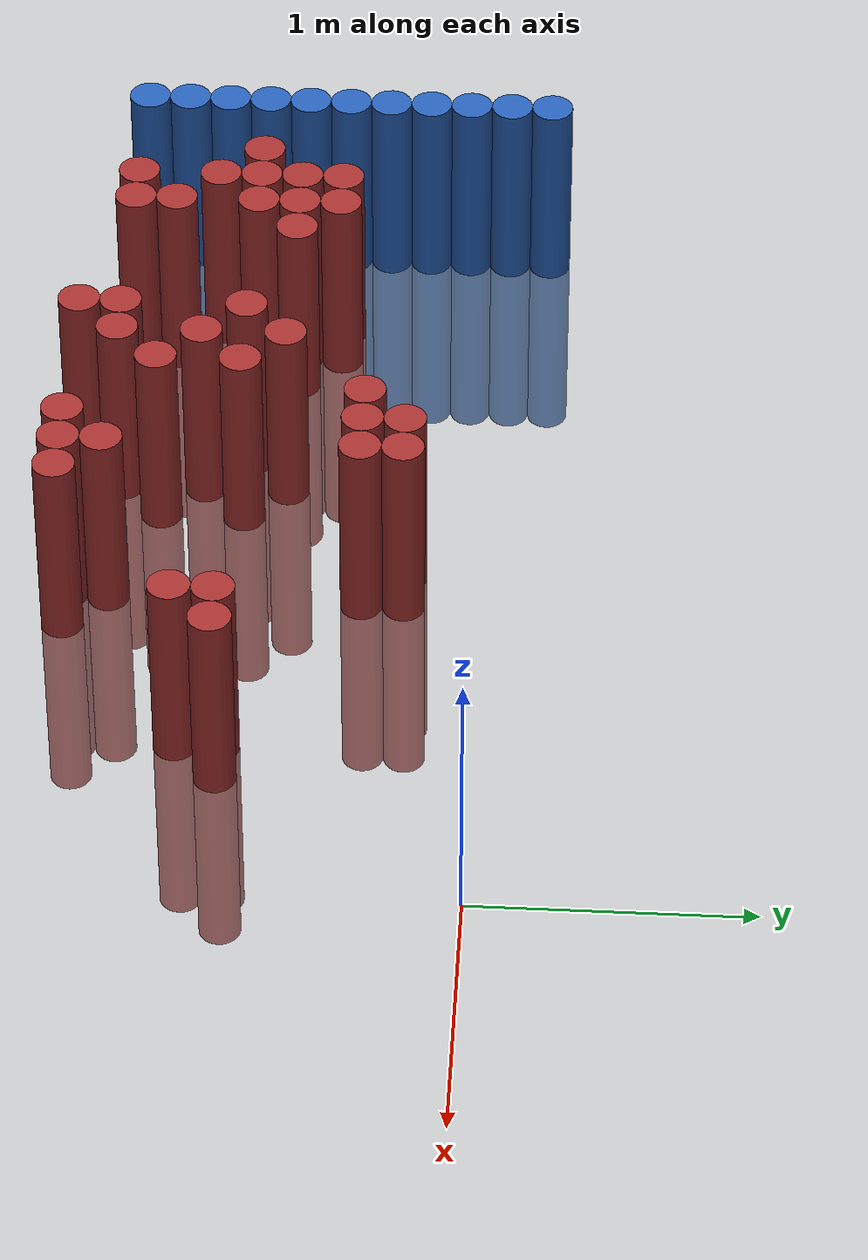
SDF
<sdf version="1.6">
 <world name="default">
  <model name="ground_plane">
   <static>1</static>
   <link name="link">
    <collision name="collision">
     <geometry><plane><normal>0 0 1</normal><size>100 100</size></plane></geometry>
     <surface><friction><ode><mu>100</mu><mu2>50</mu2></ode></friction></surface>
    </collision>
    <visual name="visual">
     <cast_shadows>0</cast_shadows>
     <geometry><plane><normal>0 0 1</normal><size>100 100</size></plane></geometry>
     <material>
      <script><uri>file://media/materials/scripts/gazebo.material</uri><name>Gazebo/Grey</name></script>
     </material>
    </visual>
   </link>
  </model>
  <model name="unit_cylinder_97">
   <static>1</static>
   <pose>-3.425000 -1.325000 0.000000 0.000000 0.000000 0.000000</pose>
   <link name="link">
    <inertial>
     <mass>1</mass>
     <inertia><ixx>0.145833</ixx><ixy>0</ixy><ixz>0</ixz><iyy>0.145833</iyy><iyz>0</iyz><izz>0.125</izz></inertia>
    </inertial>
    <collision name="collision">
     <geometry><cylinder><radius>0.075000</radius><length>1.5</length></cylinder></geometry>
    </collision>
    <visual name="visual">
     <geometry><cylinder><radius>0.075000</radius><length>1.5</length></cylinder></geometry>
     <material>
      <ambient>0.152000 0.379000 0.720000 1</ambient>
      <diffuse>0.152000 0.379000 0.720000 1</diffuse>
     </material>
     <material>
      <script><name>Gazebo/Grey</name><uri>file://media/materials/scripts/gazebo.material</uri></script>
     </material>
    </visual>
   </link>
  </model>
  <model name="unit_cylinder_99">
   <static>1</static>
   <pose>-3.425000 -1.175000 0.000000 0.000000 0.000000 0.000000</pose>
   <link name="link">
    <inertial>
     <mass>1</mass>
     <inertia><ixx>0.145833</ixx><ixy>0</ixy><ixz>0</ixz><iyy>0.145833</iyy><iyz>0</iyz><izz>0.125</izz></inertia>
    </inertial>
    <collision name="collision">
     <geometry><cylinder><radius>0.075000</radius><length>1.5</length></cylinder></geometry>
    </collision>
    <visual name="visual">
     <geometry><cylinder><radius>0.075000</radius><length>1.5</length></cylinder></geometry>
     <material>
      <ambient>0.152000 0.379000 0.720000 1</ambient>
      <diffuse>0.152000 0.379000 0.720000 1</diffuse>
     </material>
     <material>
      <script><name>Gazebo/Grey</name><uri>file://media/materials/scripts/gazebo.material</uri></script>
     </material>
    </visual>
   </link>
  </model>
  <model name="unit_cylinder_101">
   <static>1</static>
   <pose>-3.425000 -1.025000 0.000000 0.000000 0.000000 0.000000</pose>
   <link name="link">
    <inertial>
     <mass>1</mass>
     <inertia><ixx>0.145833</ixx><ixy>0</ixy><ixz>0</ixz><iyy>0.145833</iyy><iyz>0</iyz><izz>0.125</izz></inertia>
    </inertial>
    <collision name="collision">
     <geometry><cylinder><radius>0.075000</radius><length>1.5</length></cylinder></geometry>
    </collision>
    <visual name="visual">
     <geometry><cylinder><radius>0.075000</radius><length>1.5</length></cylinder></geometry>
     <material>
      <ambient>0.152000 0.379000 0.720000 1</ambient>
      <diffuse>0.152000 0.379000 0.720000 1</diffuse>
     </material>
     <material>
      <script><name>Gazebo/Grey</name><uri>file://media/materials/scripts/gazebo.material</uri></script>
     </material>
    </visual>
   </link>
  </model>
  <model name="unit_cylinder_103">
   <static>1</static>
   <pose>-3.425000 -0.875000 0.000000 0.000000 0.000000 0.000000</pose>
   <link name="link">
    <inertial>
     <mass>1</mass>
     <inertia><ixx>0.145833</ixx><ixy>0</ixy><ixz>0</ixz><iyy>0.145833</iyy><iyz>0</iyz><izz>0.125</izz></inertia>
    </inertial>
    <collision name="collision">
     <geometry><cylinder><radius>0.075000</radius><length>1.5</length></cylinder></geometry>
    </collision>
    <visual name="visual">
     <geometry><cylinder><radius>0.075000</radius><length>1.5</length></cylinder></geometry>
     <material>
      <ambient>0.152000 0.379000 0.720000 1</ambient>
      <diffuse>0.152000 0.379000 0.720000 1</diffuse>
     </material>
     <material>
      <script><name>Gazebo/Grey</name><uri>file://media/materials/scripts/gazebo.material</uri></script>
     </material>
    </visual>
   </link>
  </model>
  <model name="unit_cylinder_105">
   <static>1</static>
   <pose>-3.425000 -0.725000 0.000000 0.000000 0.000000 0.000000</pose>
   <link name="link">
    <inertial>
     <mass>1</mass>
     <inertia><ixx>0.145833</ixx><ixy>0</ixy><ixz>0</ixz><iyy>0.145833</iyy><iyz>0</iyz><izz>0.125</izz></inertia>
    </inertial>
    <collision name="collision">
     <geometry><cylinder><radius>0.075000</radius><length>1.5</length></cylinder></geometry>
    </collision>
    <visual name="visual">
     <geometry><cylinder><radius>0.075000</radius><length>1.5</length></cylinder></geometry>
     <material>
      <ambient>0.152000 0.379000 0.720000 1</ambient>
      <diffuse>0.152000 0.379000 0.720000 1</diffuse>
     </material>
     <material>
      <script><name>Gazebo/Grey</name><uri>file://media/materials/scripts/gazebo.material</uri></script>
     </material>
    </visual>
   </link>
  </model>
  <model name="unit_cylinder_107">
   <static>1</static>
   <pose>-3.425000 -0.575000 0.000000 0.000000 0.000000 0.000000</pose>
   <link name="link">
    <inertial>
     <mass>1</mass>
     <inertia><ixx>0.145833</ixx><ixy>0</ixy><ixz>0</ixz><iyy>0.145833</iyy><iyz>0</iyz><izz>0.125</izz></inertia>
    </inertial>
    <collision name="collision">
     <geometry><cylinder><radius>0.075000</radius><length>1.5</length></cylinder></geometry>
    </collision>
    <visual name="visual">
     <geometry><cylinder><radius>0.075000</radius><length>1.5</length></cylinder></geometry>
     <material>
      <ambient>0.152000 0.379000 0.720000 1</ambient>
      <diffuse>0.152000 0.379000 0.720000 1</diffuse>
     </material>
     <material>
      <script><name>Gazebo/Grey</name><uri>file://media/materials/scripts/gazebo.material</uri></script>
     </material>
    </visual>
   </link>
  </model>
  <model name="unit_cylinder_109">
   <static>1</static>
   <pose>-3.425000 -0.425000 0.000000 0.000000 0.000000 0.000000</pose>
   <link name="link">
    <inertial>
     <mass>1</mass>
     <inertia><ixx>0.145833</ixx><ixy>0</ixy><ixz>0</ixz><iyy>0.145833</iyy><iyz>0</iyz><izz>0.125</izz></inertia>
    </inertial>
    <collision name="collision">
     <geometry><cylinder><radius>0.075000</radius><length>1.5</length></cylinder></geometry>
    </collision>
    <visual name="visual">
     <geometry><cylinder><radius>0.075000</radius><length>1.5</length></cylinder></geometry>
     <material>
      <ambient>0.152000 0.379000 0.720000 1</ambient>
      <diffuse>0.152000 0.379000 0.720000 1</diffuse>
     </material>
     <material>
      <script><name>Gazebo/Grey</name><uri>file://media/materials/scripts/gazebo.material</uri></script>
     </material>
    </visual>
   </link>
  </model>
  <model name="unit_cylinder_111">
   <static>1</static>
   <pose>-3.425000 -0.275000 0.000000 0.000000 0.000000 0.000000</pose>
   <link name="link">
    <inertial>
     <mass>1</mass>
     <inertia><ixx>0.145833</ixx><ixy>0</ixy><ixz>0</ixz><iyy>0.145833</iyy><iyz>0</iyz><izz>0.125</izz></inertia>
    </inertial>
    <collision name="collision">
     <geometry><cylinder><radius>0.075000</radius><length>1.5</length></cylinder></geometry>
    </collision>
    <visual name="visual">
     <geometry><cylinder><radius>0.075000</radius><length>1.5</length></cylinder></geometry>
     <material>
      <ambient>0.152000 0.379000 0.720000 1</ambient>
      <diffuse>0.152000 0.379000 0.720000 1</diffuse>
     </material>
     <material>
      <script><name>Gazebo/Grey</name><uri>file://media/materials/scripts/gazebo.material</uri></script>
     </material>
    </visual>
   </link>
  </model>
  <model name="unit_cylinder_113">
   <static>1</static>
   <pose>-3.425000 -0.125000 0.000000 0.000000 0.000000 0.000000</pose>
   <link name="link">
    <inertial>
     <mass>1</mass>
     <inertia><ixx>0.145833</ixx><ixy>0</ixy><ixz>0</ixz><iyy>0.145833</iyy><iyz>0</iyz><izz>0.125</izz></inertia>
    </inertial>
    <collision name="collision">
     <geometry><cylinder><radius>0.075000</radius><length>1.5</length></cylinder></geometry>
    </collision>
    <visual name="visual">
     <geometry><cylinder><radius>0.075000</radius><length>1.5</length></cylinder></geometry>
     <material>
      <ambient>0.152000 0.379000 0.720000 1</ambient>
      <diffuse>0.152000 0.379000 0.720000 1</diffuse>
     </material>
     <material>
      <script><name>Gazebo/Grey</name><uri>file://media/materials/scripts/gazebo.material</uri></script>
     </material>
    </visual>
   </link>
  </model>
  <model name="unit_cylinder_115">
   <static>1</static>
   <pose>-3.425000 0.025000 0.000000 0.000000 0.000000 0.000000</pose>
   <link name="link">
    <inertial>
     <mass>1</mass>
     <inertia><ixx>0.145833</ixx><ixy>0</ixy><ixz>0</ixz><iyy>0.145833</iyy><iyz>0</iyz><izz>0.125</izz></inertia>
    </inertial>
    <collision name="collision">
     <geometry><cylinder><radius>0.075000</radius><length>1.5</length></cylinder></geometry>
    </collision>
    <visual name="visual">
     <geometry><cylinder><radius>0.075000</radius><length>1.5</length></cylinder></geometry>
     <material>
      <ambient>0.152000 0.379000 0.720000 1</ambient>
      <diffuse>0.152000 0.379000 0.720000 1</diffuse>
     </material>
     <material>
      <script><name>Gazebo/Grey</name><uri>file://media/materials/scripts/gazebo.material</uri></script>
     </material>
    </visual>
   </link>
  </model>
  <model name="unit_cylinder_117">
   <static>1</static>
   <pose>-3.425000 0.175000 0.000000 0.000000 0.000000 0.000000</pose>
   <link name="link">
    <inertial>
     <mass>1</mass>
     <inertia><ixx>0.145833</ixx><ixy>0</ixy><ixz>0</ixz><iyy>0.145833</iyy><iyz>0</iyz><izz>0.125</izz></inertia>
    </inertial>
    <collision name="collision">
     <geometry><cylinder><radius>0.075000</radius><length>1.5</length></cylinder></geometry>
    </collision>
    <visual name="visual">
     <geometry><cylinder><radius>0.075000</radius><length>1.5</length></cylinder></geometry>
     <material>
      <ambient>0.152000 0.379000 0.720000 1</ambient>
      <diffuse>0.152000 0.379000 0.720000 1</diffuse>
     </material>
     <material>
      <script><name>Gazebo/Grey</name><uri>file://media/materials/scripts/gazebo.material</uri></script>
     </material>
    </visual>
   </link>
  </model>
  <model name="unit_cylinder_212">
   <static>1</static>
   <pose>-3.425000 -1.325000 0.000000 0.000000 0.000000 0.000000</pose>
   <link name="link">
    <inertial>
     <mass>1</mass>
     <inertia><ixx>0.145833</ixx><ixy>0</ixy><ixz>0</ixz><iyy>0.145833</iyy><iyz>0</iyz><izz>0.125</izz></inertia>
    </inertial>
    <collision name="collision">
     <geometry><cylinder><radius>0.075000</radius><length>1.5</length></cylinder></geometry>
    </collision>
    <visual name="visual">
     <geometry><cylinder><radius>0.075000</radius><length>1.5</length></cylinder></geometry>
     <material>
      <ambient>0.152000 0.379000 0.720000 1</ambient>
      <diffuse>0.152000 0.379000 0.720000 1</diffuse>
     </material>
     <material>
      <script><name>Gazebo/Grey</name><uri>file://media/materials/scripts/gazebo.material</uri></script>
     </material>
    </visual>
   </link>
  </model>
  <model name="unit_cylinder_213">
   <static>1</static>
   <pose>-3.425000 -1.175000 0.000000 0.000000 0.000000 0.000000</pose>
   <link name="link">
    <inertial>
     <mass>1</mass>
     <inertia><ixx>0.145833</ixx><ixy>0</ixy><ixz>0</ixz><iyy>0.145833</iyy><iyz>0</iyz><izz>0.125</izz></inertia>
    </inertial>
    <collision name="collision">
     <geometry><cylinder><radius>0.075000</radius><length>1.5</length></cylinder></geometry>
    </collision>
    <visual name="visual">
     <geometry><cylinder><radius>0.075000</radius><length>1.5</length></cylinder></geometry>
     <material>
      <ambient>0.152000 0.379000 0.720000 1</ambient>
      <diffuse>0.152000 0.379000 0.720000 1</diffuse>
     </material>
     <material>
      <script><name>Gazebo/Grey</name><uri>file://media/materials/scripts/gazebo.material</uri></script>
     </material>
    </visual>
   </link>
  </model>
  <model name="unit_cylinder_214">
   <static>1</static>
   <pose>-3.425000 -1.025000 0.000000 0.000000 0.000000 0.000000</pose>
   <link name="link">
    <inertial>
     <mass>1</mass>
     <inertia><ixx>0.145833</ixx><ixy>0</ixy><ixz>0</ixz><iyy>0.145833</iyy><iyz>0</iyz><izz>0.125</izz></inertia>
    </inertial>
    <collision name="collision">
     <geometry><cylinder><radius>0.075000</radius><length>1.5</length></cylinder></geometry>
    </collision>
    <visual name="visual">
     <geometry><cylinder><radius>0.075000</radius><length>1.5</length></cylinder></geometry>
     <material>
      <ambient>0.152000 0.379000 0.720000 1</ambient>
      <diffuse>0.152000 0.379000 0.720000 1</diffuse>
     </material>
     <material>
      <script><name>Gazebo/Grey</name><uri>file://media/materials/scripts/gazebo.material</uri></script>
     </material>
    </visual>
   </link>
  </model>
  <model name="unit_cylinder_215">
   <static>1</static>
   <pose>-3.425000 -0.875000 0.000000 0.000000 0.000000 0.000000</pose>
   <link name="link">
    <inertial>
     <mass>1</mass>
     <inertia><ixx>0.145833</ixx><ixy>0</ixy><ixz>0</ixz><iyy>0.145833</iyy><iyz>0</iyz><izz>0.125</izz></inertia>
    </inertial>
    <collision name="collision">
     <geometry><cylinder><radius>0.075000</radius><length>1.5</length></cylinder></geometry>
    </collision>
    <visual name="visual">
     <geometry><cylinder><radius>0.075000</radius><length>1.5</length></cylinder></geometry>
     <material>
      <ambient>0.152000 0.379000 0.720000 1</ambient>
      <diffuse>0.152000 0.379000 0.720000 1</diffuse>
     </material>
     <material>
      <script><name>Gazebo/Grey</name><uri>file://media/materials/scripts/gazebo.material</uri></script>
     </material>
    </visual>
   </link>
  </model>
  <model name="unit_cylinder_216">
   <static>1</static>
   <pose>-3.425000 -0.725000 0.000000 0.000000 0.000000 0.000000</pose>
   <link name="link">
    <inertial>
     <mass>1</mass>
     <inertia><ixx>0.145833</ixx><ixy>0</ixy><ixz>0</ixz><iyy>0.145833</iyy><iyz>0</iyz><izz>0.125</izz></inertia>
    </inertial>
    <collision name="collision">
     <geometry><cylinder><radius>0.075000</radius><length>1.5</length></cylinder></geometry>
    </collision>
    <visual name="visual">
     <geometry><cylinder><radius>0.075000</radius><length>1.5</length></cylinder></geometry>
     <material>
      <ambient>0.152000 0.379000 0.720000 1</ambient>
      <diffuse>0.152000 0.379000 0.720000 1</diffuse>
     </material>
     <material>
      <script><name>Gazebo/Grey</name><uri>file://media/materials/scripts/gazebo.material</uri></script>
     </material>
    </visual>
   </link>
  </model>
  <model name="unit_cylinder_217">
   <static>1</static>
   <pose>-3.425000 -0.575000 0.000000 0.000000 0.000000 0.000000</pose>
   <link name="link">
    <inertial>
     <mass>1</mass>
     <inertia><ixx>0.145833</ixx><ixy>0</ixy><ixz>0</ixz><iyy>0.145833</iyy><iyz>0</iyz><izz>0.125</izz></inertia>
    </inertial>
    <collision name="collision">
     <geometry><cylinder><radius>0.075000</radius><length>1.5</length></cylinder></geometry>
    </collision>
    <visual name="visual">
     <geometry><cylinder><radius>0.075000</radius><length>1.5</length></cylinder></geometry>
     <material>
      <ambient>0.152000 0.379000 0.720000 1</ambient>
      <diffuse>0.152000 0.379000 0.720000 1</diffuse>
     </material>
     <material>
      <script><name>Gazebo/Grey</name><uri>file://media/materials/scripts/gazebo.material</uri></script>
     </material>
    </visual>
   </link>
  </model>
  <model name="unit_cylinder_218">
   <static>1</static>
   <pose>-3.425000 -0.425000 0.000000 0.000000 0.000000 0.000000</pose>
   <link name="link">
    <inertial>
     <mass>1</mass>
     <inertia><ixx>0.145833</ixx><ixy>0</ixy><ixz>0</ixz><iyy>0.145833</iyy><iyz>0</iyz><izz>0.125</izz></inertia>
    </inertial>
    <collision name="collision">
     <geometry><cylinder><radius>0.075000</radius><length>1.5</length></cylinder></geometry>
    </collision>
    <visual name="visual">
     <geometry><cylinder><radius>0.075000</radius><length>1.5</length></cylinder></geometry>
     <material>
      <ambient>0.152000 0.379000 0.720000 1</ambient>
      <diffuse>0.152000 0.379000 0.720000 1</diffuse>
     </material>
     <material>
      <script><name>Gazebo/Grey</name><uri>file://media/materials/scripts/gazebo.material</uri></script>
     </material>
    </visual>
   </link>
  </model>
  <model name="unit_cylinder_219">
   <static>1</static>
   <pose>-3.425000 -0.275000 0.000000 0.000000 0.000000 0.000000</pose>
   <link name="link">
    <inertial>
     <mass>1</mass>
     <inertia><ixx>0.145833</ixx><ixy>0</ixy><ixz>0</ixz><iyy>0.145833</iyy><iyz>0</iyz><izz>0.125</izz></inertia>
    </inertial>
    <collision name="collision">
     <geometry><cylinder><radius>0.075000</radius><length>1.5</length></cylinder></geometry>
    </collision>
    <visual name="visual">
     <geometry><cylinder><radius>0.075000</radius><length>1.5</length></cylinder></geometry>
     <material>
      <ambient>0.152000 0.379000 0.720000 1</ambient>
      <diffuse>0.152000 0.379000 0.720000 1</diffuse>
     </material>
     <material>
      <script><name>Gazebo/Grey</name><uri>file://media/materials/scripts/gazebo.material</uri></script>
     </material>
    </visual>
   </link>
  </model>
  <model name="unit_cylinder_220">
   <static>1</static>
   <pose>-3.425000 -0.125000 0.000000 0.000000 0.000000 0.000000</pose>
   <link name="link">
    <inertial>
     <mass>1</mass>
     <inertia><ixx>0.145833</ixx><ixy>0</ixy><ixz>0</ixz><iyy>0.145833</iyy><iyz>0</iyz><izz>0.125</izz></inertia>
    </inertial>
    <collision name="collision">
     <geometry><cylinder><radius>0.075000</radius><length>1.5</length></cylinder></geometry>
    </collision>
    <visual name="visual">
     <geometry><cylinder><radius>0.075000</radius><length>1.5</length></cylinder></geometry>
     <material>
      <ambient>0.152000 0.379000 0.720000 1</ambient>
      <diffuse>0.152000 0.379000 0.720000 1</diffuse>
     </material>
     <material>
      <script><name>Gazebo/Grey</name><uri>file://media/materials/scripts/gazebo.material</uri></script>
     </material>
    </visual>
   </link>
  </model>
  <model name="unit_cylinder_221">
   <static>1</static>
   <pose>-3.425000 0.025000 0.000000 0.000000 0.000000 0.000000</pose>
   <link name="link">
    <inertial>
     <mass>1</mass>
     <inertia><ixx>0.145833</ixx><ixy>0</ixy><ixz>0</ixz><iyy>0.145833</iyy><iyz>0</iyz><izz>0.125</izz></inertia>
    </inertial>
    <collision name="collision">
     <geometry><cylinder><radius>0.075000</radius><length>1.5</length></cylinder></geometry>
    </collision>
    <visual name="visual">
     <geometry><cylinder><radius>0.075000</radius><length>1.5</length></cylinder></geometry>
     <material>
      <ambient>0.152000 0.379000 0.720000 1</ambient>
      <diffuse>0.152000 0.379000 0.720000 1</diffuse>
     </material>
     <material>
      <script><name>Gazebo/Grey</name><uri>file://media/materials/scripts/gazebo.material</uri></script>
     </material>
    </visual>
   </link>
  </model>
  <model name="unit_cylinder_222">
   <static>1</static>
   <pose>-3.425000 0.175000 0.000000 0.000000 0.000000 0.000000</pose>
   <link name="link">
    <inertial>
     <mass>1</mass>
     <inertia><ixx>0.145833</ixx><ixy>0</ixy><ixz>0</ixz><iyy>0.145833</iyy><iyz>0</iyz><izz>0.125</izz></inertia>
    </inertial>
    <collision name="collision">
     <geometry><cylinder><radius>0.075000</radius><length>1.5</length></cylinder></geometry>
    </collision>
    <visual name="visual">
     <geometry><cylinder><radius>0.075000</radius><length>1.5</length></cylinder></geometry>
     <material>
      <ambient>0.152000 0.379000 0.720000 1</ambient>
      <diffuse>0.152000 0.379000 0.720000 1</diffuse>
     </material>
     <material>
      <script><name>Gazebo/Grey</name><uri>file://media/materials/scripts/gazebo.material</uri></script>
     </material>
    </visual>
   </link>
  </model>
  <model name="unit_cylinder_269">
   <static>1</static>
   <pose>-3.125000 -0.875000 0.000000 0.000000 0.000000 0.000000</pose>
   <link name="link">
    <inertial>
     <mass>1</mass>
     <inertia><ixx>0.145833</ixx><ixy>0</ixy><ixz>0</ixz><iyy>0.145833</iyy><iyz>0</iyz><izz>0.125</izz></inertia>
    </inertial>
    <collision name="collision">
     <geometry><cylinder><radius>0.075000</radius><length>1.5</length></cylinder></geometry>
    </collision>
    <visual name="visual">
     <geometry><cylinder><radius>0.075000</radius><length>1.5</length></cylinder></geometry>
     <material>
      <ambient>0.648000 0.192000 0.192000 1</ambient>
      <diffuse>0.648000 0.192000 0.192000 1</diffuse>
     </material>
     <material>
      <script><name>Gazebo/Grey</name><uri>file://media/materials/scripts/gazebo.material</uri></script>
     </material>
    </visual>
   </link>
  </model>
  <model name="unit_cylinder_274">
   <static>1</static>
   <pose>-2.975000 -1.325000 0.000000 0.000000 0.000000 0.000000</pose>
   <link name="link">
    <inertial>
     <mass>1</mass>
     <inertia><ixx>0.145833</ixx><ixy>0</ixy><ixz>0</ixz><iyy>0.145833</iyy><iyz>0</iyz><izz>0.125</izz></inertia>
    </inertial>
    <collision name="collision">
     <geometry><cylinder><radius>0.075000</radius><length>1.5</length></cylinder></geometry>
    </collision>
    <visual name="visual">
     <geometry><cylinder><radius>0.075000</radius><length>1.5</length></cylinder></geometry>
     <material>
      <ambient>0.648000 0.192000 0.192000 1</ambient>
      <diffuse>0.648000 0.192000 0.192000 1</diffuse>
     </material>
     <material>
      <script><name>Gazebo/Grey</name><uri>file://media/materials/scripts/gazebo.material</uri></script>
     </material>
    </visual>
   </link>
  </model>
  <model name="unit_cylinder_275">
   <static>1</static>
   <pose>-2.975000 -1.025000 0.000000 0.000000 0.000000 0.000000</pose>
   <link name="link">
    <inertial>
     <mass>1</mass>
     <inertia><ixx>0.145833</ixx><ixy>0</ixy><ixz>0</ixz><iyy>0.145833</iyy><iyz>0</iyz><izz>0.125</izz></inertia>
    </inertial>
    <collision name="collision">
     <geometry><cylinder><radius>0.075000</radius><length>1.5</length></cylinder></geometry>
    </collision>
    <visual name="visual">
     <geometry><cylinder><radius>0.075000</radius><length>1.5</length></cylinder></geometry>
     <material>
      <ambient>0.648000 0.192000 0.192000 1</ambient>
      <diffuse>0.648000 0.192000 0.192000 1</diffuse>
     </material>
     <material>
      <script><name>Gazebo/Grey</name><uri>file://media/materials/scripts/gazebo.material</uri></script>
     </material>
    </visual>
   </link>
  </model>
  <model name="unit_cylinder_276">
   <static>1</static>
   <pose>-2.975000 -0.875000 0.000000 0.000000 0.000000 0.000000</pose>
   <link name="link">
    <inertial>
     <mass>1</mass>
     <inertia><ixx>0.145833</ixx><ixy>0</ixy><ixz>0</ixz><iyy>0.145833</iyy><iyz>0</iyz><izz>0.125</izz></inertia>
    </inertial>
    <collision name="collision">
     <geometry><cylinder><radius>0.075000</radius><length>1.5</length></cylinder></geometry>
    </collision>
    <visual name="visual">
     <geometry><cylinder><radius>0.075000</radius><length>1.5</length></cylinder></geometry>
     <material>
      <ambient>0.648000 0.192000 0.192000 1</ambient>
      <diffuse>0.648000 0.192000 0.192000 1</diffuse>
     </material>
     <material>
      <script><name>Gazebo/Grey</name><uri>file://media/materials/scripts/gazebo.material</uri></script>
     </material>
    </visual>
   </link>
  </model>
  <model name="unit_cylinder_277">
   <static>1</static>
   <pose>-2.975000 -0.725000 0.000000 0.000000 0.000000 0.000000</pose>
   <link name="link">
    <inertial>
     <mass>1</mass>
     <inertia><ixx>0.145833</ixx><ixy>0</ixy><ixz>0</ixz><iyy>0.145833</iyy><iyz>0</iyz><izz>0.125</izz></inertia>
    </inertial>
    <collision name="collision">
     <geometry><cylinder><radius>0.075000</radius><length>1.5</length></cylinder></geometry>
    </collision>
    <visual name="visual">
     <geometry><cylinder><radius>0.075000</radius><length>1.5</length></cylinder></geometry>
     <material>
      <ambient>0.648000 0.192000 0.192000 1</ambient>
      <diffuse>0.648000 0.192000 0.192000 1</diffuse>
     </material>
     <material>
      <script><name>Gazebo/Grey</name><uri>file://media/materials/scripts/gazebo.material</uri></script>
     </material>
    </visual>
   </link>
  </model>
  <model name="unit_cylinder_278">
   <static>1</static>
   <pose>-2.975000 -0.575000 0.000000 0.000000 0.000000 0.000000</pose>
   <link name="link">
    <inertial>
     <mass>1</mass>
     <inertia><ixx>0.145833</ixx><ixy>0</ixy><ixz>0</ixz><iyy>0.145833</iyy><iyz>0</iyz><izz>0.125</izz></inertia>
    </inertial>
    <collision name="collision">
     <geometry><cylinder><radius>0.075000</radius><length>1.5</length></cylinder></geometry>
    </collision>
    <visual name="visual">
     <geometry><cylinder><radius>0.075000</radius><length>1.5</length></cylinder></geometry>
     <material>
      <ambient>0.648000 0.192000 0.192000 1</ambient>
      <diffuse>0.648000 0.192000 0.192000 1</diffuse>
     </material>
     <material>
      <script><name>Gazebo/Grey</name><uri>file://media/materials/scripts/gazebo.material</uri></script>
     </material>
    </visual>
   </link>
  </model>
  <model name="unit_cylinder_282">
   <static>1</static>
   <pose>-2.825000 -1.325000 0.000000 0.000000 0.000000 0.000000</pose>
   <link name="link">
    <inertial>
     <mass>1</mass>
     <inertia><ixx>0.145833</ixx><ixy>0</ixy><ixz>0</ixz><iyy>0.145833</iyy><iyz>0</iyz><izz>0.125</izz></inertia>
    </inertial>
    <collision name="collision">
     <geometry><cylinder><radius>0.075000</radius><length>1.5</length></cylinder></geometry>
    </collision>
    <visual name="visual">
     <geometry><cylinder><radius>0.075000</radius><length>1.5</length></cylinder></geometry>
     <material>
      <ambient>0.648000 0.192000 0.192000 1</ambient>
      <diffuse>0.648000 0.192000 0.192000 1</diffuse>
     </material>
     <material>
      <script><name>Gazebo/Grey</name><uri>file://media/materials/scripts/gazebo.material</uri></script>
     </material>
    </visual>
   </link>
  </model>
  <model name="unit_cylinder_283">
   <static>1</static>
   <pose>-2.825000 -1.175000 0.000000 0.000000 0.000000 0.000000</pose>
   <link name="link">
    <inertial>
     <mass>1</mass>
     <inertia><ixx>0.145833</ixx><ixy>0</ixy><ixz>0</ixz><iyy>0.145833</iyy><iyz>0</iyz><izz>0.125</izz></inertia>
    </inertial>
    <collision name="collision">
     <geometry><cylinder><radius>0.075000</radius><length>1.5</length></cylinder></geometry>
    </collision>
    <visual name="visual">
     <geometry><cylinder><radius>0.075000</radius><length>1.5</length></cylinder></geometry>
     <material>
      <ambient>0.648000 0.192000 0.192000 1</ambient>
      <diffuse>0.648000 0.192000 0.192000 1</diffuse>
     </material>
     <material>
      <script><name>Gazebo/Grey</name><uri>file://media/materials/scripts/gazebo.material</uri></script>
     </material>
    </visual>
   </link>
  </model>
  <model name="unit_cylinder_284">
   <static>1</static>
   <pose>-2.825000 -0.875000 0.000000 0.000000 0.000000 0.000000</pose>
   <link name="link">
    <inertial>
     <mass>1</mass>
     <inertia><ixx>0.145833</ixx><ixy>0</ixy><ixz>0</ixz><iyy>0.145833</iyy><iyz>0</iyz><izz>0.125</izz></inertia>
    </inertial>
    <collision name="collision">
     <geometry><cylinder><radius>0.075000</radius><length>1.5</length></cylinder></geometry>
    </collision>
    <visual name="visual">
     <geometry><cylinder><radius>0.075000</radius><length>1.5</length></cylinder></geometry>
     <material>
      <ambient>0.648000 0.192000 0.192000 1</ambient>
      <diffuse>0.648000 0.192000 0.192000 1</diffuse>
     </material>
     <material>
      <script><name>Gazebo/Grey</name><uri>file://media/materials/scripts/gazebo.material</uri></script>
     </material>
    </visual>
   </link>
  </model>
  <model name="unit_cylinder_285">
   <static>1</static>
   <pose>-2.825000 -0.725000 0.000000 0.000000 0.000000 0.000000</pose>
   <link name="link">
    <inertial>
     <mass>1</mass>
     <inertia><ixx>0.145833</ixx><ixy>0</ixy><ixz>0</ixz><iyy>0.145833</iyy><iyz>0</iyz><izz>0.125</izz></inertia>
    </inertial>
    <collision name="collision">
     <geometry><cylinder><radius>0.075000</radius><length>1.5</length></cylinder></geometry>
    </collision>
    <visual name="visual">
     <geometry><cylinder><radius>0.075000</radius><length>1.5</length></cylinder></geometry>
     <material>
      <ambient>0.648000 0.192000 0.192000 1</ambient>
      <diffuse>0.648000 0.192000 0.192000 1</diffuse>
     </material>
     <material>
      <script><name>Gazebo/Grey</name><uri>file://media/materials/scripts/gazebo.material</uri></script>
     </material>
    </visual>
   </link>
  </model>
  <model name="unit_cylinder_286">
   <static>1</static>
   <pose>-2.825000 -0.575000 0.000000 0.000000 0.000000 0.000000</pose>
   <link name="link">
    <inertial>
     <mass>1</mass>
     <inertia><ixx>0.145833</ixx><ixy>0</ixy><ixz>0</ixz><iyy>0.145833</iyy><iyz>0</iyz><izz>0.125</izz></inertia>
    </inertial>
    <collision name="collision">
     <geometry><cylinder><radius>0.075000</radius><length>1.5</length></cylinder></geometry>
    </collision>
    <visual name="visual">
     <geometry><cylinder><radius>0.075000</radius><length>1.5</length></cylinder></geometry>
     <material>
      <ambient>0.648000 0.192000 0.192000 1</ambient>
      <diffuse>0.648000 0.192000 0.192000 1</diffuse>
     </material>
     <material>
      <script><name>Gazebo/Grey</name><uri>file://media/materials/scripts/gazebo.material</uri></script>
     </material>
    </visual>
   </link>
  </model>
  <model name="unit_cylinder_288">
   <static>1</static>
   <pose>-2.675000 -0.725000 0.000000 0.000000 0.000000 0.000000</pose>
   <link name="link">
    <inertial>
     <mass>1</mass>
     <inertia><ixx>0.145833</ixx><ixy>0</ixy><ixz>0</ixz><iyy>0.145833</iyy><iyz>0</iyz><izz>0.125</izz></inertia>
    </inertial>
    <collision name="collision">
     <geometry><cylinder><radius>0.075000</radius><length>1.5</length></cylinder></geometry>
    </collision>
    <visual name="visual">
     <geometry><cylinder><radius>0.075000</radius><length>1.5</length></cylinder></geometry>
     <material>
      <ambient>0.648000 0.192000 0.192000 1</ambient>
      <diffuse>0.648000 0.192000 0.192000 1</diffuse>
     </material>
     <material>
      <script><name>Gazebo/Grey</name><uri>file://media/materials/scripts/gazebo.material</uri></script>
     </material>
    </visual>
   </link>
  </model>
  <model name="unit_cylinder_294">
   <static>1</static>
   <pose>-2.225000 -1.475000 0.000000 0.000000 0.000000 0.000000</pose>
   <link name="link">
    <inertial>
     <mass>1</mass>
     <inertia><ixx>0.145833</ixx><ixy>0</ixy><ixz>0</ixz><iyy>0.145833</iyy><iyz>0</iyz><izz>0.125</izz></inertia>
    </inertial>
    <collision name="collision">
     <geometry><cylinder><radius>0.075000</radius><length>1.5</length></cylinder></geometry>
    </collision>
    <visual name="visual">
     <geometry><cylinder><radius>0.075000</radius><length>1.5</length></cylinder></geometry>
     <material>
      <ambient>0.648000 0.192000 0.192000 1</ambient>
      <diffuse>0.648000 0.192000 0.192000 1</diffuse>
     </material>
     <material>
      <script><name>Gazebo/Grey</name><uri>file://media/materials/scripts/gazebo.material</uri></script>
     </material>
    </visual>
   </link>
  </model>
  <model name="unit_cylinder_295">
   <static>1</static>
   <pose>-2.225000 -1.325000 0.000000 0.000000 0.000000 0.000000</pose>
   <link name="link">
    <inertial>
     <mass>1</mass>
     <inertia><ixx>0.145833</ixx><ixy>0</ixy><ixz>0</ixz><iyy>0.145833</iyy><iyz>0</iyz><izz>0.125</izz></inertia>
    </inertial>
    <collision name="collision">
     <geometry><cylinder><radius>0.075000</radius><length>1.5</length></cylinder></geometry>
    </collision>
    <visual name="visual">
     <geometry><cylinder><radius>0.075000</radius><length>1.5</length></cylinder></geometry>
     <material>
      <ambient>0.648000 0.192000 0.192000 1</ambient>
      <diffuse>0.648000 0.192000 0.192000 1</diffuse>
     </material>
     <material>
      <script><name>Gazebo/Grey</name><uri>file://media/materials/scripts/gazebo.material</uri></script>
     </material>
    </visual>
   </link>
  </model>
  <model name="unit_cylinder_296">
   <static>1</static>
   <pose>-2.225000 -0.875000 0.000000 0.000000 0.000000 0.000000</pose>
   <link name="link">
    <inertial>
     <mass>1</mass>
     <inertia><ixx>0.145833</ixx><ixy>0</ixy><ixz>0</ixz><iyy>0.145833</iyy><iyz>0</iyz><izz>0.125</izz></inertia>
    </inertial>
    <collision name="collision">
     <geometry><cylinder><radius>0.075000</radius><length>1.5</length></cylinder></geometry>
    </collision>
    <visual name="visual">
     <geometry><cylinder><radius>0.075000</radius><length>1.5</length></cylinder></geometry>
     <material>
      <ambient>0.648000 0.192000 0.192000 1</ambient>
      <diffuse>0.648000 0.192000 0.192000 1</diffuse>
     </material>
     <material>
      <script><name>Gazebo/Grey</name><uri>file://media/materials/scripts/gazebo.material</uri></script>
     </material>
    </visual>
   </link>
  </model>
  <model name="unit_cylinder_299">
   <static>1</static>
   <pose>-2.075000 -1.325000 0.000000 0.000000 0.000000 0.000000</pose>
   <link name="link">
    <inertial>
     <mass>1</mass>
     <inertia><ixx>0.145833</ixx><ixy>0</ixy><ixz>0</ixz><iyy>0.145833</iyy><iyz>0</iyz><izz>0.125</izz></inertia>
    </inertial>
    <collision name="collision">
     <geometry><cylinder><radius>0.075000</radius><length>1.5</length></cylinder></geometry>
    </collision>
    <visual name="visual">
     <geometry><cylinder><radius>0.075000</radius><length>1.5</length></cylinder></geometry>
     <material>
      <ambient>0.648000 0.192000 0.192000 1</ambient>
      <diffuse>0.648000 0.192000 0.192000 1</diffuse>
     </material>
     <material>
      <script><name>Gazebo/Grey</name><uri>file://media/materials/scripts/gazebo.material</uri></script>
     </material>
    </visual>
   </link>
  </model>
  <model name="unit_cylinder_300">
   <static>1</static>
   <pose>-2.075000 -1.025000 0.000000 0.000000 0.000000 0.000000</pose>
   <link name="link">
    <inertial>
     <mass>1</mass>
     <inertia><ixx>0.145833</ixx><ixy>0</ixy><ixz>0</ixz><iyy>0.145833</iyy><iyz>0</iyz><izz>0.125</izz></inertia>
    </inertial>
    <collision name="collision">
     <geometry><cylinder><radius>0.075000</radius><length>1.5</length></cylinder></geometry>
    </collision>
    <visual name="visual">
     <geometry><cylinder><radius>0.075000</radius><length>1.5</length></cylinder></geometry>
     <material>
      <ambient>0.648000 0.192000 0.192000 1</ambient>
      <diffuse>0.648000 0.192000 0.192000 1</diffuse>
     </material>
     <material>
      <script><name>Gazebo/Grey</name><uri>file://media/materials/scripts/gazebo.material</uri></script>
     </material>
    </visual>
   </link>
  </model>
  <model name="unit_cylinder_301">
   <static>1</static>
   <pose>-2.075000 -0.725000 0.000000 0.000000 0.000000 0.000000</pose>
   <link name="link">
    <inertial>
     <mass>1</mass>
     <inertia><ixx>0.145833</ixx><ixy>0</ixy><ixz>0</ixz><iyy>0.145833</iyy><iyz>0</iyz><izz>0.125</izz></inertia>
    </inertial>
    <collision name="collision">
     <geometry><cylinder><radius>0.075000</radius><length>1.5</length></cylinder></geometry>
    </collision>
    <visual name="visual">
     <geometry><cylinder><radius>0.075000</radius><length>1.5</length></cylinder></geometry>
     <material>
      <ambient>0.648000 0.192000 0.192000 1</ambient>
      <diffuse>0.648000 0.192000 0.192000 1</diffuse>
     </material>
     <material>
      <script><name>Gazebo/Grey</name><uri>file://media/materials/scripts/gazebo.material</uri></script>
     </material>
    </visual>
   </link>
  </model>
  <model name="unit_cylinder_303">
   <static>1</static>
   <pose>-1.925000 -1.175000 0.000000 0.000000 0.000000 0.000000</pose>
   <link name="link">
    <inertial>
     <mass>1</mass>
     <inertia><ixx>0.145833</ixx><ixy>0</ixy><ixz>0</ixz><iyy>0.145833</iyy><iyz>0</iyz><izz>0.125</izz></inertia>
    </inertial>
    <collision name="collision">
     <geometry><cylinder><radius>0.075000</radius><length>1.5</length></cylinder></geometry>
    </collision>
    <visual name="visual">
     <geometry><cylinder><radius>0.075000</radius><length>1.5</length></cylinder></geometry>
     <material>
      <ambient>0.648000 0.192000 0.192000 1</ambient>
      <diffuse>0.648000 0.192000 0.192000 1</diffuse>
     </material>
     <material>
      <script><name>Gazebo/Grey</name><uri>file://media/materials/scripts/gazebo.material</uri></script>
     </material>
    </visual>
   </link>
  </model>
  <model name="unit_cylinder_304">
   <static>1</static>
   <pose>-1.925000 -0.875000 0.000000 0.000000 0.000000 0.000000</pose>
   <link name="link">
    <inertial>
     <mass>1</mass>
     <inertia><ixx>0.145833</ixx><ixy>0</ixy><ixz>0</ixz><iyy>0.145833</iyy><iyz>0</iyz><izz>0.125</izz></inertia>
    </inertial>
    <collision name="collision">
     <geometry><cylinder><radius>0.075000</radius><length>1.5</length></cylinder></geometry>
    </collision>
    <visual name="visual">
     <geometry><cylinder><radius>0.075000</radius><length>1.5</length></cylinder></geometry>
     <material>
      <ambient>0.648000 0.192000 0.192000 1</ambient>
      <diffuse>0.648000 0.192000 0.192000 1</diffuse>
     </material>
     <material>
      <script><name>Gazebo/Grey</name><uri>file://media/materials/scripts/gazebo.material</uri></script>
     </material>
    </visual>
   </link>
  </model>
  <model name="unit_cylinder_305">
   <static>1</static>
   <pose>-1.775000 -0.425000 0.000000 0.000000 0.000000 0.000000</pose>
   <link name="link">
    <inertial>
     <mass>1</mass>
     <inertia><ixx>0.145833</ixx><ixy>0</ixy><ixz>0</ixz><iyy>0.145833</iyy><iyz>0</iyz><izz>0.125</izz></inertia>
    </inertial>
    <collision name="collision">
     <geometry><cylinder><radius>0.075000</radius><length>1.5</length></cylinder></geometry>
    </collision>
    <visual name="visual">
     <geometry><cylinder><radius>0.075000</radius><length>1.5</length></cylinder></geometry>
     <material>
      <ambient>0.648000 0.192000 0.192000 1</ambient>
      <diffuse>0.648000 0.192000 0.192000 1</diffuse>
     </material>
     <material>
      <script><name>Gazebo/Grey</name><uri>file://media/materials/scripts/gazebo.material</uri></script>
     </material>
    </visual>
   </link>
  </model>
  <model name="unit_cylinder_307">
   <static>1</static>
   <pose>-1.625000 -1.475000 0.000000 0.000000 0.000000 0.000000</pose>
   <link name="link">
    <inertial>
     <mass>1</mass>
     <inertia><ixx>0.145833</ixx><ixy>0</ixy><ixz>0</ixz><iyy>0.145833</iyy><iyz>0</iyz><izz>0.125</izz></inertia>
    </inertial>
    <collision name="collision">
     <geometry><cylinder><radius>0.075000</radius><length>1.5</length></cylinder></geometry>
    </collision>
    <visual name="visual">
     <geometry><cylinder><radius>0.075000</radius><length>1.5</length></cylinder></geometry>
     <material>
      <ambient>0.648000 0.192000 0.192000 1</ambient>
      <diffuse>0.648000 0.192000 0.192000 1</diffuse>
     </material>
     <material>
      <script><name>Gazebo/Grey</name><uri>file://media/materials/scripts/gazebo.material</uri></script>
     </material>
    </visual>
   </link>
  </model>
  <model name="unit_cylinder_308">
   <static>1</static>
   <pose>-1.625000 -0.425000 0.000000 0.000000 0.000000 0.000000</pose>
   <link name="link">
    <inertial>
     <mass>1</mass>
     <inertia><ixx>0.145833</ixx><ixy>0</ixy><ixz>0</ixz><iyy>0.145833</iyy><iyz>0</iyz><izz>0.125</izz></inertia>
    </inertial>
    <collision name="collision">
     <geometry><cylinder><radius>0.075000</radius><length>1.5</length></cylinder></geometry>
    </collision>
    <visual name="visual">
     <geometry><cylinder><radius>0.075000</radius><length>1.5</length></cylinder></geometry>
     <material>
      <ambient>0.648000 0.192000 0.192000 1</ambient>
      <diffuse>0.648000 0.192000 0.192000 1</diffuse>
     </material>
     <material>
      <script><name>Gazebo/Grey</name><uri>file://media/materials/scripts/gazebo.material</uri></script>
     </material>
    </visual>
   </link>
  </model>
  <model name="unit_cylinder_309">
   <static>1</static>
   <pose>-1.625000 -0.275000 0.000000 0.000000 0.000000 0.000000</pose>
   <link name="link">
    <inertial>
     <mass>1</mass>
     <inertia><ixx>0.145833</ixx><ixy>0</ixy><ixz>0</ixz><iyy>0.145833</iyy><iyz>0</iyz><izz>0.125</izz></inertia>
    </inertial>
    <collision name="collision">
     <geometry><cylinder><radius>0.075000</radius><length>1.5</length></cylinder></geometry>
    </collision>
    <visual name="visual">
     <geometry><cylinder><radius>0.075000</radius><length>1.5</length></cylinder></geometry>
     <material>
      <ambient>0.648000 0.192000 0.192000 1</ambient>
      <diffuse>0.648000 0.192000 0.192000 1</diffuse>
     </material>
     <material>
      <script><name>Gazebo/Grey</name><uri>file://media/materials/scripts/gazebo.material</uri></script>
     </material>
    </visual>
   </link>
  </model>
  <model name="unit_cylinder_312">
   <static>1</static>
   <pose>-1.475000 -1.475000 0.000000 0.000000 0.000000 0.000000</pose>
   <link name="link">
    <inertial>
     <mass>1</mass>
     <inertia><ixx>0.145833</ixx><ixy>0</ixy><ixz>0</ixz><iyy>0.145833</iyy><iyz>0</iyz><izz>0.125</izz></inertia>
    </inertial>
    <collision name="collision">
     <geometry><cylinder><radius>0.075000</radius><length>1.5</length></cylinder></geometry>
    </collision>
    <visual name="visual">
     <geometry><cylinder><radius>0.075000</radius><length>1.5</length></cylinder></geometry>
     <material>
      <ambient>0.648000 0.192000 0.192000 1</ambient>
      <diffuse>0.648000 0.192000 0.192000 1</diffuse>
     </material>
     <material>
      <script><name>Gazebo/Grey</name><uri>file://media/materials/scripts/gazebo.material</uri></script>
     </material>
    </visual>
   </link>
  </model>
  <model name="unit_cylinder_313">
   <static>1</static>
   <pose>-1.475000 -1.325000 0.000000 0.000000 0.000000 0.000000</pose>
   <link name="link">
    <inertial>
     <mass>1</mass>
     <inertia><ixx>0.145833</ixx><ixy>0</ixy><ixz>0</ixz><iyy>0.145833</iyy><iyz>0</iyz><izz>0.125</izz></inertia>
    </inertial>
    <collision name="collision">
     <geometry><cylinder><radius>0.075000</radius><length>1.5</length></cylinder></geometry>
    </collision>
    <visual name="visual">
     <geometry><cylinder><radius>0.075000</radius><length>1.5</length></cylinder></geometry>
     <material>
      <ambient>0.648000 0.192000 0.192000 1</ambient>
      <diffuse>0.648000 0.192000 0.192000 1</diffuse>
     </material>
     <material>
      <script><name>Gazebo/Grey</name><uri>file://media/materials/scripts/gazebo.material</uri></script>
     </material>
    </visual>
   </link>
  </model>
  <model name="unit_cylinder_314">
   <static>1</static>
   <pose>-1.475000 -0.425000 0.000000 0.000000 0.000000 0.000000</pose>
   <link name="link">
    <inertial>
     <mass>1</mass>
     <inertia><ixx>0.145833</ixx><ixy>0</ixy><ixz>0</ixz><iyy>0.145833</iyy><iyz>0</iyz><izz>0.125</izz></inertia>
    </inertial>
    <collision name="collision">
     <geometry><cylinder><radius>0.075000</radius><length>1.5</length></cylinder></geometry>
    </collision>
    <visual name="visual">
     <geometry><cylinder><radius>0.075000</radius><length>1.5</length></cylinder></geometry>
     <material>
      <ambient>0.648000 0.192000 0.192000 1</ambient>
      <diffuse>0.648000 0.192000 0.192000 1</diffuse>
     </material>
     <material>
      <script><name>Gazebo/Grey</name><uri>file://media/materials/scripts/gazebo.material</uri></script>
     </material>
    </visual>
   </link>
  </model>
  <model name="unit_cylinder_315">
   <static>1</static>
   <pose>-1.475000 -0.275000 0.000000 0.000000 0.000000 0.000000</pose>
   <link name="link">
    <inertial>
     <mass>1</mass>
     <inertia><ixx>0.145833</ixx><ixy>0</ixy><ixz>0</ixz><iyy>0.145833</iyy><iyz>0</iyz><izz>0.125</izz></inertia>
    </inertial>
    <collision name="collision">
     <geometry><cylinder><radius>0.075000</radius><length>1.5</length></cylinder></geometry>
    </collision>
    <visual name="visual">
     <geometry><cylinder><radius>0.075000</radius><length>1.5</length></cylinder></geometry>
     <material>
      <ambient>0.648000 0.192000 0.192000 1</ambient>
      <diffuse>0.648000 0.192000 0.192000 1</diffuse>
     </material>
     <material>
      <script><name>Gazebo/Grey</name><uri>file://media/materials/scripts/gazebo.material</uri></script>
     </material>
    </visual>
   </link>
  </model>
  <model name="unit_cylinder_317">
   <static>1</static>
   <pose>-1.325000 -1.475000 0.000000 0.000000 0.000000 0.000000</pose>
   <link name="link">
    <inertial>
     <mass>1</mass>
     <inertia><ixx>0.145833</ixx><ixy>0</ixy><ixz>0</ixz><iyy>0.145833</iyy><iyz>0</iyz><izz>0.125</izz></inertia>
    </inertial>
    <collision name="collision">
     <geometry><cylinder><radius>0.075000</radius><length>1.5</length></cylinder></geometry>
    </collision>
    <visual name="visual">
     <geometry><cylinder><radius>0.075000</radius><length>1.5</length></cylinder></geometry>
     <material>
      <ambient>0.648000 0.192000 0.192000 1</ambient>
      <diffuse>0.648000 0.192000 0.192000 1</diffuse>
     </material>
     <material>
      <script><name>Gazebo/Grey</name><uri>file://media/materials/scripts/gazebo.material</uri></script>
     </material>
    </visual>
   </link>
  </model>
  <model name="unit_cylinder_327">
   <static>1</static>
   <pose>-0.725000 -1.025000 0.000000 0.000000 0.000000 0.000000</pose>
   <link name="link">
    <inertial>
     <mass>1</mass>
     <inertia><ixx>0.145833</ixx><ixy>0</ixy><ixz>0</ixz><iyy>0.145833</iyy><iyz>0</iyz><izz>0.125</izz></inertia>
    </inertial>
    <collision name="collision">
     <geometry><cylinder><radius>0.075000</radius><length>1.5</length></cylinder></geometry>
    </collision>
    <visual name="visual">
     <geometry><cylinder><radius>0.075000</radius><length>1.5</length></cylinder></geometry>
     <material>
      <ambient>0.648000 0.192000 0.192000 1</ambient>
      <diffuse>0.648000 0.192000 0.192000 1</diffuse>
     </material>
     <material>
      <script><name>Gazebo/Grey</name><uri>file://media/materials/scripts/gazebo.material</uri></script>
     </material>
    </visual>
   </link>
  </model>
  <model name="unit_cylinder_328">
   <static>1</static>
   <pose>-0.725000 -0.875000 0.000000 0.000000 0.000000 0.000000</pose>
   <link name="link">
    <inertial>
     <mass>1</mass>
     <inertia><ixx>0.145833</ixx><ixy>0</ixy><ixz>0</ixz><iyy>0.145833</iyy><iyz>0</iyz><izz>0.125</izz></inertia>
    </inertial>
    <collision name="collision">
     <geometry><cylinder><radius>0.075000</radius><length>1.5</length></cylinder></geometry>
    </collision>
    <visual name="visual">
     <geometry><cylinder><radius>0.075000</radius><length>1.5</length></cylinder></geometry>
     <material>
      <ambient>0.648000 0.192000 0.192000 1</ambient>
      <diffuse>0.648000 0.192000 0.192000 1</diffuse>
     </material>
     <material>
      <script><name>Gazebo/Grey</name><uri>file://media/materials/scripts/gazebo.material</uri></script>
     </material>
    </visual>
   </link>
  </model>
  <model name="unit_cylinder_331">
   <static>1</static>
   <pose>-0.575000 -0.875000 0.000000 0.000000 0.000000 0.000000</pose>
   <link name="link">
    <inertial>
     <mass>1</mass>
     <inertia><ixx>0.145833</ixx><ixy>0</ixy><ixz>0</ixz><iyy>0.145833</iyy><iyz>0</iyz><izz>0.125</izz></inertia>
    </inertial>
    <collision name="collision">
     <geometry><cylinder><radius>0.075000</radius><length>1.5</length></cylinder></geometry>
    </collision>
    <visual name="visual">
     <geometry><cylinder><radius>0.075000</radius><length>1.5</length></cylinder></geometry>
     <material>
      <ambient>0.648000 0.192000 0.192000 1</ambient>
      <diffuse>0.648000 0.192000 0.192000 1</diffuse>
     </material>
     <material>
      <script><name>Gazebo/Grey</name><uri>file://media/materials/scripts/gazebo.material</uri></script>
     </material>
    </visual>
   </link>
  </model>
 </world>
</sdf>
